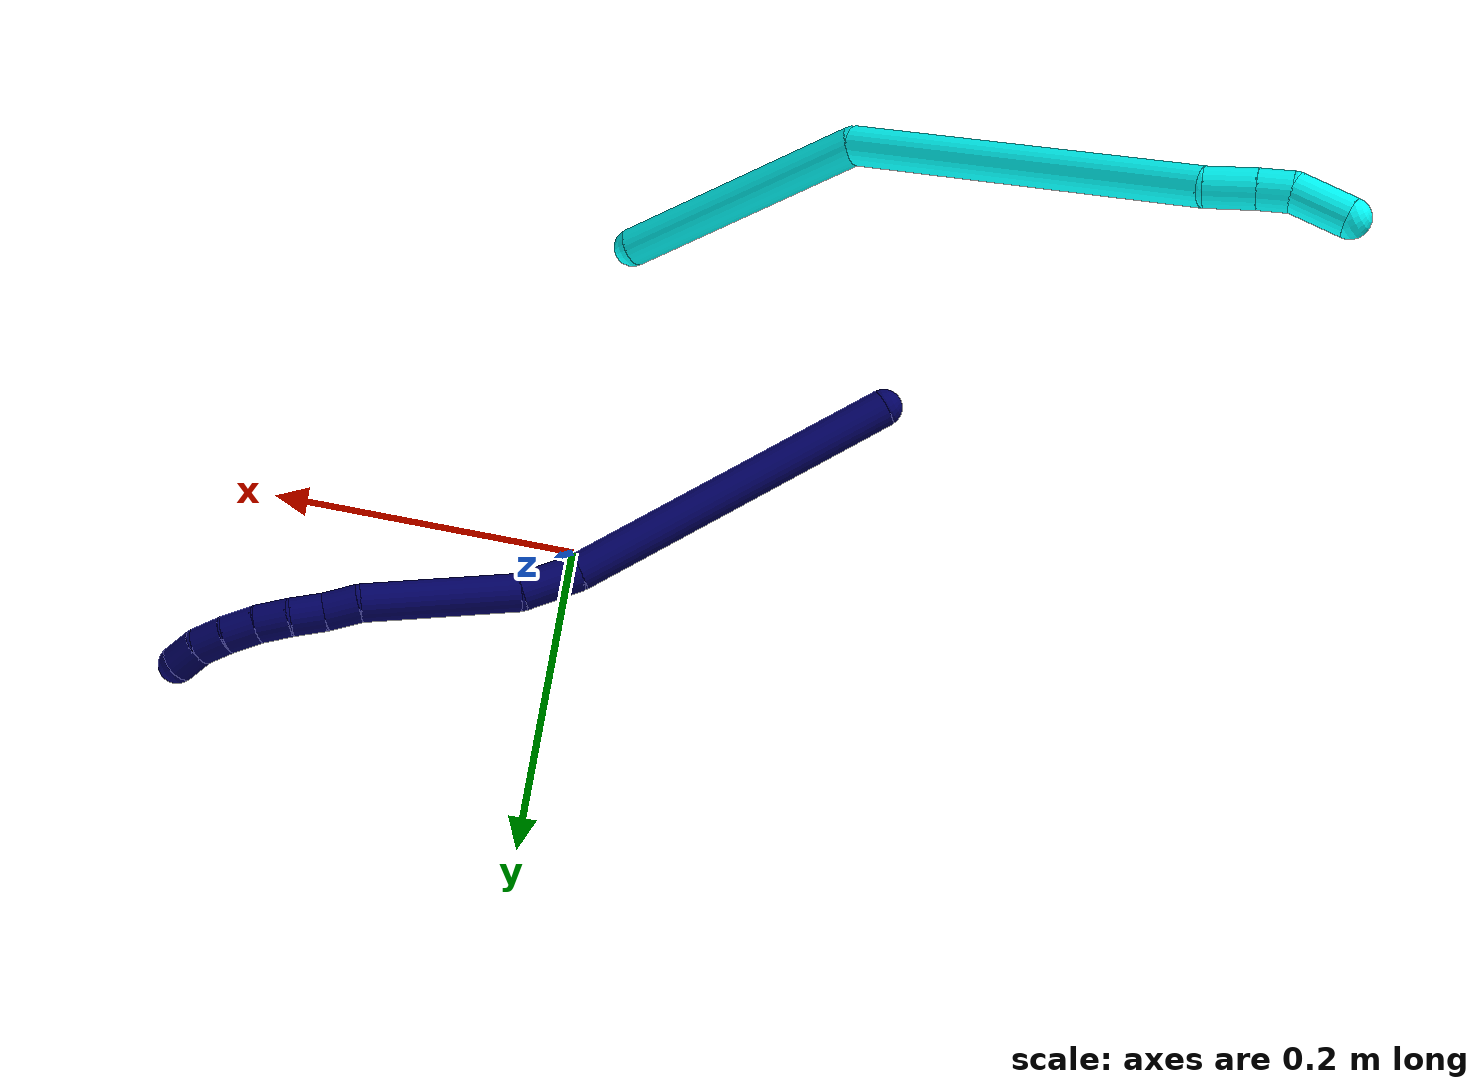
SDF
<sdf version="1.7">
 <world name="default">
  <model name="3">
   <static>0</static>
   <link name="3">
    <collision name="collision-cylinder-e_1_1_4">
     <pose>0.000725 -0.002177 0.08595 0.025323 0.00843 0.000107</pose>
     <geometry><cylinder><radius>0.0125</radius><length>0.171961</length></cylinder></geometry>
     <surface>
      <friction><ode><mu>1.16</mu><mu2>1.16</mu2><slip1>0</slip1><slip2>0</slip2></ode></friction>
      <contact><ode><kp>1e+06</kp><kd>1</kd><max_vel>0</max_vel><min_depth>0.001</min_depth></ode></contact>
     </surface>
    </collision>
    <visual name="visual-cylinder-e_1_1_4">
     <pose>0.000725 -0.002177 0.08595 0.025323 0.00843 0.000107</pose>
     <geometry><cylinder><radius>0.0125</radius><length>0.171961</length></cylinder></geometry>
     <material><ambient>0.003922 1 0.996078 1</ambient></material>
    </visual>
    <collision name="collision-cylinder-e_2_4_5">
     <pose>0.047034 -0.04444 0.274758 0.371615 0.391603 0.074533</pose>
     <geometry><cylinder><radius>0.0125</radius><length>0.238869</length></cylinder></geometry>
     <surface>
      <friction><ode><mu>1.16</mu><mu2>1.16</mu2><slip1>0</slip1><slip2>0</slip2></ode></friction>
      <contact><ode><kp>1e+06</kp><kd>1</kd><max_vel>0</max_vel><min_depth>0.001</min_depth></ode></contact>
     </surface>
    </collision>
    <visual name="visual-cylinder-e_2_4_5">
     <pose>0.047034 -0.04444 0.274758 0.371615 0.391603 0.074533</pose>
     <geometry><cylinder><radius>0.0125</radius><length>0.238869</length></cylinder></geometry>
     <material><ambient>0.003922 1 0.996078 1</ambient></material>
    </visual>
    <collision name="collision-cylinder-e_3_5_6">
     <pose>0.099852 -0.085327 0.391657 0.056994 0.475008 0.0138</pose>
     <geometry><cylinder><radius>0.0125</radius><length>0.03163</length></cylinder></geometry>
     <surface>
      <friction><ode><mu>1.16</mu><mu2>1.16</mu2><slip1>0</slip1><slip2>0</slip2></ode></friction>
      <contact><ode><kp>1e+06</kp><kd>1</kd><max_vel>0</max_vel><min_depth>0.001</min_depth></ode></contact>
     </surface>
    </collision>
    <visual name="visual-cylinder-e_3_5_6">
     <pose>0.099852 -0.085327 0.391657 0.056994 0.475008 0.0138</pose>
     <geometry><cylinder><radius>0.0125</radius><length>0.03163</length></cylinder></geometry>
     <material><ambient>0.003922 1 0.996078 1</ambient></material>
    </visual>
    <collision name="collision-cylinder-e_4_6_7">
     <pose>0.112211 -0.087041 0.414814 0.099832 0.510179 0.026053</pose>
     <geometry><cylinder><radius>0.0125</radius><length>0.020995</length></cylinder></geometry>
     <surface>
      <friction><ode><mu>1.16</mu><mu2>1.16</mu2><slip1>0</slip1><slip2>0</slip2></ode></friction>
      <contact><ode><kp>1e+06</kp><kd>1</kd><max_vel>0</max_vel><min_depth>0.001</min_depth></ode></contact>
     </surface>
    </collision>
    <visual name="visual-cylinder-e_4_6_7">
     <pose>0.112211 -0.087041 0.414814 0.099832 0.510179 0.026053</pose>
     <geometry><cylinder><radius>0.0125</radius><length>0.020995</length></cylinder></geometry>
     <material><ambient>0.003922 1 0.996078 1</ambient></material>
    </visual>
    <collision name="collision-cylinder-e_5_7_2">
     <pose>0.129505 -0.093807 0.436241 0.443734 0.728673 0.171633</pose>
     <geometry><cylinder><radius>0.0125</radius><length>0.036544</length></cylinder></geometry>
     <surface>
      <friction><ode><mu>1.16</mu><mu2>1.16</mu2><slip1>0</slip1><slip2>0</slip2></ode></friction>
      <contact><ode><kp>1e+06</kp><kd>1</kd><max_vel>0</max_vel><min_depth>0.001</min_depth></ode></contact>
     </surface>
    </collision>
    <visual name="visual-cylinder-e_5_7_2">
     <pose>0.129505 -0.093807 0.436241 0.443734 0.728673 0.171633</pose>
     <geometry><cylinder><radius>0.0125</radius><length>0.036544</length></cylinder></geometry>
     <material><ambient>0.003922 1 0.996078 1</ambient></material>
    </visual>
    <collision name="collision-sphere-2">
     <pose>0.141672 -0.099659 0.448553 0 -0 0</pose>
     <geometry><sphere><radius>0.0125</radius></sphere></geometry>
     <surface>
      <friction><ode><mu>1.16</mu><mu2>1.16</mu2><slip1>0</slip1><slip2>0</slip2></ode></friction>
      <contact><ode><kp>1e+06</kp><kd>1</kd><max_vel>0</max_vel><min_depth>0.001</min_depth></ode></contact>
     </surface>
    </collision>
    <visual name="visual-sphere-2">
     <pose>0.141672 -0.099659 0.448553 0 -0 0</pose>
     <geometry><sphere><radius>0.0125</radius></sphere></geometry>
     <material><ambient>0.003922 1 0.996078 1</ambient></material>
    </visual>
    <collision name="collision-sphere-7">
     <pose>0.117338 -0.087954 0.423929 0 -0 0</pose>
     <geometry><sphere><radius>0.0125</radius></sphere></geometry>
     <surface>
      <friction><ode><mu>1.16</mu><mu2>1.16</mu2><slip1>0</slip1><slip2>0</slip2></ode></friction>
      <contact><ode><kp>1e+06</kp><kd>1</kd><max_vel>0</max_vel><min_depth>0.001</min_depth></ode></contact>
     </surface>
    </collision>
    <visual name="visual-sphere-7">
     <pose>0.117338 -0.087954 0.423929 0 -0 0</pose>
     <geometry><sphere><radius>0.0125</radius></sphere></geometry>
     <material><ambient>0.003922 1 0.996078 1</ambient></material>
    </visual>
    <collision name="collision-sphere-6">
     <pose>0.107085 -0.086128 0.405698 0 -0 0</pose>
     <geometry><sphere><radius>0.0125</radius></sphere></geometry>
     <surface>
      <friction><ode><mu>1.16</mu><mu2>1.16</mu2><slip1>0</slip1><slip2>0</slip2></ode></friction>
      <contact><ode><kp>1e+06</kp><kd>1</kd><max_vel>0</max_vel><min_depth>0.001</min_depth></ode></contact>
     </surface>
    </collision>
    <visual name="visual-sphere-6">
     <pose>0.107085 -0.086128 0.405698 0 -0 0</pose>
     <geometry><sphere><radius>0.0125</radius></sphere></geometry>
     <material><ambient>0.003922 1 0.996078 1</ambient></material>
    </visual>
    <collision name="collision-sphere-5">
     <pose>0.092619 -0.084526 0.377616 0 -0 0</pose>
     <geometry><sphere><radius>0.0125</radius></sphere></geometry>
     <surface>
      <friction><ode><mu>1.16</mu><mu2>1.16</mu2><slip1>0</slip1><slip2>0</slip2></ode></friction>
      <contact><ode><kp>1e+06</kp><kd>1</kd><max_vel>0</max_vel><min_depth>0.001</min_depth></ode></contact>
     </surface>
    </collision>
    <visual name="visual-sphere-5">
     <pose>0.092619 -0.084526 0.377616 0 -0 0</pose>
     <geometry><sphere><radius>0.0125</radius></sphere></geometry>
     <material><ambient>0.003922 1 0.996078 1</ambient></material>
    </visual>
    <collision name="collision-sphere-1">
     <geometry><sphere><radius>0.0125</radius></sphere></geometry>
     <surface>
      <friction><ode><mu>1.16</mu><mu2>1.16</mu2><slip1>0</slip1><slip2>0</slip2></ode></friction>
      <contact><ode><kp>1e+06</kp><kd>1</kd><max_vel>0</max_vel><min_depth>0.001</min_depth></ode></contact>
     </surface>
    </collision>
    <visual name="visual-sphere-1">
     <geometry><sphere><radius>0.0125</radius></sphere></geometry>
     <material><ambient>0.003922 1 0.996078 1</ambient></material>
    </visual>
    <collision name="collision-sphere-4">
     <pose>0.00145 -0.004354 0.1719 0 -0 0</pose>
     <geometry><sphere><radius>0.0125</radius></sphere></geometry>
     <surface>
      <friction><ode><mu>1.16</mu><mu2>1.16</mu2><slip1>0</slip1><slip2>0</slip2></ode></friction>
      <contact><ode><kp>1e+06</kp><kd>1</kd><max_vel>0</max_vel><min_depth>0.001</min_depth></ode></contact>
     </surface>
    </collision>
    <visual name="visual-sphere-4">
     <pose>0.00145 -0.004354 0.1719 0 -0 0</pose>
     <geometry><sphere><radius>0.0125</radius></sphere></geometry>
     <material><ambient>0.003922 1 0.996078 1</ambient></material>
    </visual>
    <inertial>
     <pose>0.043213 -0.037888 0.234901 0 -0 0</pose>
     <mass>0.5</mass>
     <inertia>
      <ixx>0.001586</ixx>
      <ixy>0</ixy>
      <ixz>0</ixz>
      <iyy>0.001589</iyy>
      <iyz>0</iyz>
      <izz>-1.5e-05</izz>
     </inertia>
    </inertial>
   </link>
   <pose>-0.001998 -0.204661 0.011865 -1.08994 0.363291 2.34488</pose>
  </model>
  <model name="7">
   <static>0</static>
   <link name="7">
    <collision name="collision-cylinder-e_1_1_4">
     <pose>-0.022771 -0.002982 0.111789 0.026667 -0.200878 -0.002688</pose>
     <geometry><cylinder><radius>0.0125</radius><length>0.228248</length></cylinder></geometry>
     <surface>
      <friction><ode><mu>1.16</mu><mu2>1.16</mu2><slip1>0</slip1><slip2>0</slip2></ode></friction>
      <contact><ode><kp>1e+06</kp><kd>1</kd><max_vel>0</max_vel><min_depth>0.001</min_depth></ode></contact>
     </surface>
    </collision>
    <visual name="visual-cylinder-e_1_1_4">
     <pose>-0.022771 -0.002982 0.111789 0.026667 -0.200878 -0.002688</pose>
     <geometry><cylinder><radius>0.0125</radius><length>0.228248</length></cylinder></geometry>
     <material><ambient>0.003922 0 0.403922 1</ambient></material>
    </visual>
    <collision name="collision-cylinder-e_2_4_5">
     <pose>-0.050652 -0.009866 0.242598 0.202349 -0.257356 -0.026271</pose>
     <geometry><cylinder><radius>0.0125</radius><length>0.040153</length></cylinder></geometry>
     <surface>
      <friction><ode><mu>1.16</mu><mu2>1.16</mu2><slip1>0</slip1><slip2>0</slip2></ode></friction>
      <contact><ode><kp>1e+06</kp><kd>1</kd><max_vel>0</max_vel><min_depth>0.001</min_depth></ode></contact>
     </surface>
    </collision>
    <visual name="visual-cylinder-e_2_4_5">
     <pose>-0.050652 -0.009866 0.242598 0.202349 -0.257356 -0.026271</pose>
     <geometry><cylinder><radius>0.0125</radius><length>0.040153</length></cylinder></geometry>
     <material><ambient>0.003922 0 0.403922 1</ambient></material>
    </visual>
    <collision name="collision-cylinder-e_3_5_6">
     <pose>-0.063139 -0.036075 0.307007 0.456796 -0.144834 -0.033723</pose>
     <geometry><cylinder><radius>0.0125</radius><length>0.102223</length></cylinder></geometry>
     <surface>
      <friction><ode><mu>1.16</mu><mu2>1.16</mu2><slip1>0</slip1><slip2>0</slip2></ode></friction>
      <contact><ode><kp>1e+06</kp><kd>1</kd><max_vel>0</max_vel><min_depth>0.001</min_depth></ode></contact>
     </surface>
    </collision>
    <visual name="visual-cylinder-e_3_5_6">
     <pose>-0.063139 -0.036075 0.307007 0.456796 -0.144834 -0.033723</pose>
     <geometry><cylinder><radius>0.0125</radius><length>0.102223</length></cylinder></geometry>
     <material><ambient>0.003922 0 0.403922 1</ambient></material>
    </visual>
    <collision name="collision-cylinder-e_4_6_7">
     <pose>-0.070706 -0.061192 0.363495 0.247909 -0.016627 -0.002072</pose>
     <geometry><cylinder><radius>0.0125</radius><length>0.022897</length></cylinder></geometry>
     <surface>
      <friction><ode><mu>1.16</mu><mu2>1.16</mu2><slip1>0</slip1><slip2>0</slip2></ode></friction>
      <contact><ode><kp>1e+06</kp><kd>1</kd><max_vel>0</max_vel><min_depth>0.001</min_depth></ode></contact>
     </surface>
    </collision>
    <visual name="visual-cylinder-e_4_6_7">
     <pose>-0.070706 -0.061192 0.363495 0.247909 -0.016627 -0.002072</pose>
     <geometry><cylinder><radius>0.0125</radius><length>0.022897</length></cylinder></geometry>
     <material><ambient>0.003922 0 0.403922 1</ambient></material>
    </visual>
    <collision name="collision-cylinder-e_5_7_8">
     <pose>-0.071756 -0.067814 0.384751 0.359079 -0.079086 -0.014361</pose>
     <geometry><cylinder><radius>0.0125</radius><length>0.021771</length></cylinder></geometry>
     <surface>
      <friction><ode><mu>1.16</mu><mu2>1.16</mu2><slip1>0</slip1><slip2>0</slip2></ode></friction>
      <contact><ode><kp>1e+06</kp><kd>1</kd><max_vel>0</max_vel><min_depth>0.001</min_depth></ode></contact>
     </surface>
    </collision>
    <visual name="visual-cylinder-e_5_7_8">
     <pose>-0.071756 -0.067814 0.384751 0.359079 -0.079086 -0.014361</pose>
     <geometry><cylinder><radius>0.0125</radius><length>0.021771</length></cylinder></geometry>
     <material><ambient>0.003922 0 0.403922 1</ambient></material>
    </visual>
    <collision name="collision-cylinder-e_6_8_9">
     <pose>-0.071717 -0.074627 0.405412 0.278243 0.082153 0.01151</pose>
     <geometry><cylinder><radius>0.0125</radius><length>0.021917</length></cylinder></geometry>
     <surface>
      <friction><ode><mu>1.16</mu><mu2>1.16</mu2><slip1>0</slip1><slip2>0</slip2></ode></friction>
      <contact><ode><kp>1e+06</kp><kd>1</kd><max_vel>0</max_vel><min_depth>0.001</min_depth></ode></contact>
     </surface>
    </collision>
    <visual name="visual-cylinder-e_6_8_9">
     <pose>-0.071717 -0.074627 0.405412 0.278243 0.082153 0.01151</pose>
     <geometry><cylinder><radius>0.0125</radius><length>0.021917</length></cylinder></geometry>
     <material><ambient>0.003922 0 0.403922 1</ambient></material>
    </visual>
    <collision name="collision-cylinder-e_7_9_10">
     <pose>-0.069886 -0.079343 0.426596 0.159249 0.085875 0.006856</pose>
     <geometry><cylinder><radius>0.0125</radius><length>0.02172</length></cylinder></geometry>
     <surface>
      <friction><ode><mu>1.16</mu><mu2>1.16</mu2><slip1>0</slip1><slip2>0</slip2></ode></friction>
      <contact><ode><kp>1e+06</kp><kd>1</kd><max_vel>0</max_vel><min_depth>0.001</min_depth></ode></contact>
     </surface>
    </collision>
    <visual name="visual-cylinder-e_7_9_10">
     <pose>-0.069886 -0.079343 0.426596 0.159249 0.085875 0.006856</pose>
     <geometry><cylinder><radius>0.0125</radius><length>0.02172</length></cylinder></geometry>
     <material><ambient>0.003922 0 0.403922 1</ambient></material>
    </visual>
    <collision name="collision-cylinder-e_8_10_11">
     <pose>-0.067003 -0.08174 0.447318 0.067795 0.191638 0.006518</pose>
     <geometry><cylinder><radius>0.0125</radius><length>0.020499</length></cylinder></geometry>
     <surface>
      <friction><ode><mu>1.16</mu><mu2>1.16</mu2><slip1>0</slip1><slip2>0</slip2></ode></friction>
      <contact><ode><kp>1e+06</kp><kd>1</kd><max_vel>0</max_vel><min_depth>0.001</min_depth></ode></contact>
     </surface>
    </collision>
    <visual name="visual-cylinder-e_8_10_11">
     <pose>-0.067003 -0.08174 0.447318 0.067795 0.191638 0.006518</pose>
     <geometry><cylinder><radius>0.0125</radius><length>0.020499</length></cylinder></geometry>
     <material><ambient>0.003922 0 0.403922 1</ambient></material>
    </visual>
    <collision name="collision-cylinder-e_9_11_2">
     <pose>-0.0626 -0.080575 0.467175 -0.185906 0.240496 -0.022527</pose>
     <geometry><cylinder><radius>0.0125</radius><length>0.020574</length></cylinder></geometry>
     <surface>
      <friction><ode><mu>1.16</mu><mu2>1.16</mu2><slip1>0</slip1><slip2>0</slip2></ode></friction>
      <contact><ode><kp>1e+06</kp><kd>1</kd><max_vel>0</max_vel><min_depth>0.001</min_depth></ode></contact>
     </surface>
    </collision>
    <visual name="visual-cylinder-e_9_11_2">
     <pose>-0.0626 -0.080575 0.467175 -0.185906 0.240496 -0.022527</pose>
     <geometry><cylinder><radius>0.0125</radius><length>0.020574</length></cylinder></geometry>
     <material><ambient>0.003922 0 0.403922 1</ambient></material>
    </visual>
    <collision name="collision-sphere-2">
     <pose>-0.06015 -0.078728 0.476994 0 -0 0</pose>
     <geometry><sphere><radius>0.0125</radius></sphere></geometry>
     <surface>
      <friction><ode><mu>1.16</mu><mu2>1.16</mu2><slip1>0</slip1><slip2>0</slip2></ode></friction>
      <contact><ode><kp>1e+06</kp><kd>1</kd><max_vel>0</max_vel><min_depth>0.001</min_depth></ode></contact>
     </surface>
    </collision>
    <visual name="visual-sphere-2">
     <pose>-0.06015 -0.078728 0.476994 0 -0 0</pose>
     <geometry><sphere><radius>0.0125</radius></sphere></geometry>
     <material><ambient>0.003922 0 0.403922 1</ambient></material>
    </visual>
    <collision name="collision-sphere-11">
     <pose>-0.065051 -0.082422 0.457356 0 -0 0</pose>
     <geometry><sphere><radius>0.0125</radius></sphere></geometry>
     <surface>
      <friction><ode><mu>1.16</mu><mu2>1.16</mu2><slip1>0</slip1><slip2>0</slip2></ode></friction>
      <contact><ode><kp>1e+06</kp><kd>1</kd><max_vel>0</max_vel><min_depth>0.001</min_depth></ode></contact>
     </surface>
    </collision>
    <visual name="visual-sphere-11">
     <pose>-0.065051 -0.082422 0.457356 0 -0 0</pose>
     <geometry><sphere><radius>0.0125</radius></sphere></geometry>
     <material><ambient>0.003922 0 0.403922 1</ambient></material>
    </visual>
    <collision name="collision-sphere-10">
     <pose>-0.068955 -0.081059 0.437279 0 -0 0</pose>
     <geometry><sphere><radius>0.0125</radius></sphere></geometry>
     <surface>
      <friction><ode><mu>1.16</mu><mu2>1.16</mu2><slip1>0</slip1><slip2>0</slip2></ode></friction>
      <contact><ode><kp>1e+06</kp><kd>1</kd><max_vel>0</max_vel><min_depth>0.001</min_depth></ode></contact>
     </surface>
    </collision>
    <visual name="visual-sphere-10">
     <pose>-0.068955 -0.081059 0.437279 0 -0 0</pose>
     <geometry><sphere><radius>0.0125</radius></sphere></geometry>
     <material><ambient>0.003922 0 0.403922 1</ambient></material>
    </visual>
    <collision name="collision-sphere-9">
     <pose>-0.070818 -0.077627 0.415913 0 -0 0</pose>
     <geometry><sphere><radius>0.0125</radius></sphere></geometry>
     <surface>
      <friction><ode><mu>1.16</mu><mu2>1.16</mu2><slip1>0</slip1><slip2>0</slip2></ode></friction>
      <contact><ode><kp>1e+06</kp><kd>1</kd><max_vel>0</max_vel><min_depth>0.001</min_depth></ode></contact>
     </surface>
    </collision>
    <visual name="visual-sphere-9">
     <pose>-0.070818 -0.077627 0.415913 0 -0 0</pose>
     <geometry><sphere><radius>0.0125</radius></sphere></geometry>
     <material><ambient>0.003922 0 0.403922 1</ambient></material>
    </visual>
    <collision name="collision-sphere-4">
     <pose>-0.045542 -0.005964 0.223578 0 -0 0</pose>
     <geometry><sphere><radius>0.0125</radius></sphere></geometry>
     <surface>
      <friction><ode><mu>1.16</mu><mu2>1.16</mu2><slip1>0</slip1><slip2>0</slip2></ode></friction>
      <contact><ode><kp>1e+06</kp><kd>1</kd><max_vel>0</max_vel><min_depth>0.001</min_depth></ode></contact>
     </surface>
    </collision>
    <visual name="visual-sphere-4">
     <pose>-0.045542 -0.005964 0.223578 0 -0 0</pose>
     <geometry><sphere><radius>0.0125</radius></sphere></geometry>
     <material><ambient>0.003922 0 0.403922 1</ambient></material>
    </visual>
    <collision name="collision-sphere-1">
     <geometry><sphere><radius>0.0125</radius></sphere></geometry>
     <surface>
      <friction><ode><mu>1.16</mu><mu2>1.16</mu2><slip1>0</slip1><slip2>0</slip2></ode></friction>
      <contact><ode><kp>1e+06</kp><kd>1</kd><max_vel>0</max_vel><min_depth>0.001</min_depth></ode></contact>
     </surface>
    </collision>
    <visual name="visual-sphere-1">
     <geometry><sphere><radius>0.0125</radius></sphere></geometry>
     <material><ambient>0.003922 0 0.403922 1</ambient></material>
    </visual>
    <collision name="collision-sphere-8">
     <pose>-0.072616 -0.071628 0.39491 0 -0 0</pose>
     <geometry><sphere><radius>0.0125</radius></sphere></geometry>
     <surface>
      <friction><ode><mu>1.16</mu><mu2>1.16</mu2><slip1>0</slip1><slip2>0</slip2></ode></friction>
      <contact><ode><kp>1e+06</kp><kd>1</kd><max_vel>0</max_vel><min_depth>0.001</min_depth></ode></contact>
     </surface>
    </collision>
    <visual name="visual-sphere-8">
     <pose>-0.072616 -0.071628 0.39491 0 -0 0</pose>
     <geometry><sphere><radius>0.0125</radius></sphere></geometry>
     <material><ambient>0.003922 0 0.403922 1</ambient></material>
    </visual>
    <collision name="collision-sphere-5">
     <pose>-0.055762 -0.013767 0.261617 0 -0 0</pose>
     <geometry><sphere><radius>0.0125</radius></sphere></geometry>
     <surface>
      <friction><ode><mu>1.16</mu><mu2>1.16</mu2><slip1>0</slip1><slip2>0</slip2></ode></friction>
      <contact><ode><kp>1e+06</kp><kd>1</kd><max_vel>0</max_vel><min_depth>0.001</min_depth></ode></contact>
     </surface>
    </collision>
    <visual name="visual-sphere-5">
     <pose>-0.055762 -0.013767 0.261617 0 -0 0</pose>
     <geometry><sphere><radius>0.0125</radius></sphere></geometry>
     <material><ambient>0.003922 0 0.403922 1</ambient></material>
    </visual>
    <collision name="collision-sphere-6">
     <pose>-0.070516 -0.058383 0.352398 0 -0 0</pose>
     <geometry><sphere><radius>0.0125</radius></sphere></geometry>
     <surface>
      <friction><ode><mu>1.16</mu><mu2>1.16</mu2><slip1>0</slip1><slip2>0</slip2></ode></friction>
      <contact><ode><kp>1e+06</kp><kd>1</kd><max_vel>0</max_vel><min_depth>0.001</min_depth></ode></contact>
     </surface>
    </collision>
    <visual name="visual-sphere-6">
     <pose>-0.070516 -0.058383 0.352398 0 -0 0</pose>
     <geometry><sphere><radius>0.0125</radius></sphere></geometry>
     <material><ambient>0.003922 0 0.403922 1</ambient></material>
    </visual>
    <collision name="collision-sphere-7">
     <pose>-0.070896 -0.064001 0.374592 0 -0 0</pose>
     <geometry><sphere><radius>0.0125</radius></sphere></geometry>
     <surface>
      <friction><ode><mu>1.16</mu><mu2>1.16</mu2><slip1>0</slip1><slip2>0</slip2></ode></friction>
      <contact><ode><kp>1e+06</kp><kd>1</kd><max_vel>0</max_vel><min_depth>0.001</min_depth></ode></contact>
     </surface>
    </collision>
    <visual name="visual-sphere-7">
     <pose>-0.070896 -0.064001 0.374592 0 -0 0</pose>
     <geometry><sphere><radius>0.0125</radius></sphere></geometry>
     <material><ambient>0.003922 0 0.403922 1</ambient></material>
    </visual>
    <inertial>
     <pose>-0.045235 -0.028668 0.240542 0 -0 0</pose>
     <mass>0.5</mass>
     <inertia>
      <ixx>0.001078</ixx>
      <ixy>0</ixy>
      <ixz>0</ixz>
      <iyy>0.001088</iyy>
      <iyz>0</iyz>
      <izz>0.000321</izz>
     </inertia>
    </inertial>
   </link>
   <pose>-0.183503 -0.131607 0.012206 -1.97691 1.42305 -1.29167</pose>
  </model>
 </world>
</sdf>
